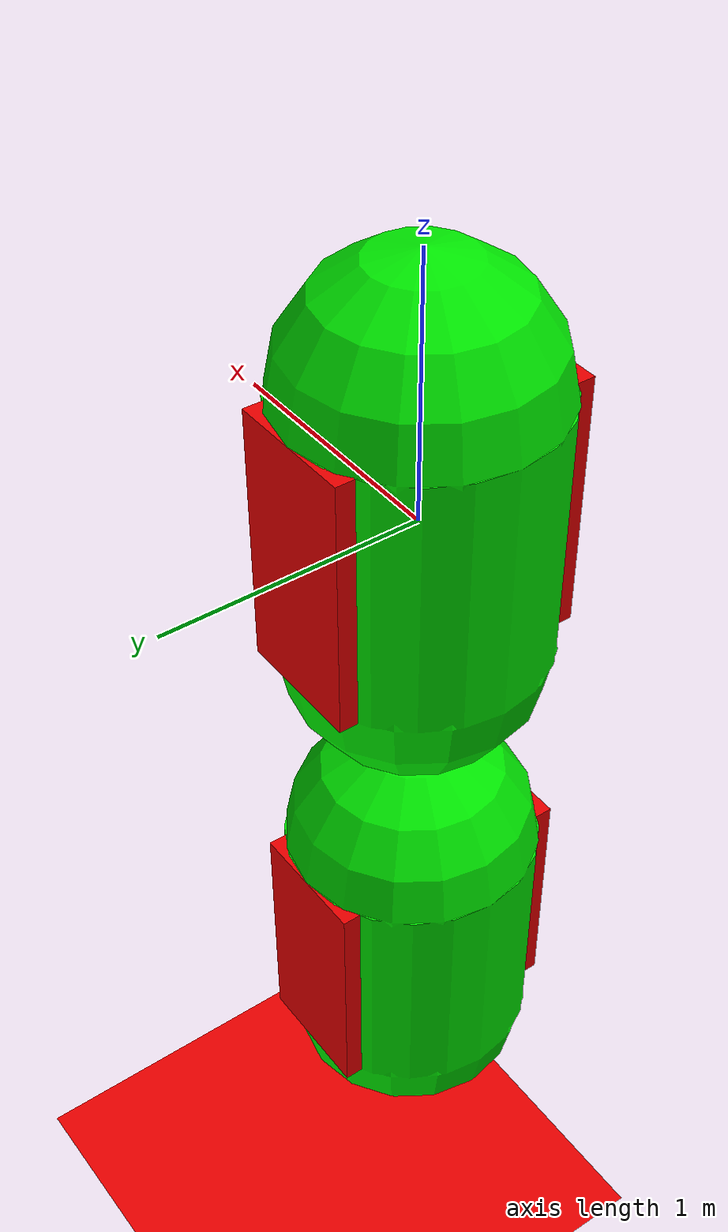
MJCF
<mujoco>
    <option timestep="0.01" integrator="RK4">
		<flag gravity="disable" energy="enable"/>
	</option>
    <compiler autolimits="true"/>
    <worldbody>
        <light diffuse=".5 .5 .5" pos="0 0 3" dir="0 0 -1"/>
        <geom type="plane" pos="0 0 -4" size="3 3 0.1" rgba=".9 0 0 1"/>
        <body name="root" pos="0 0 0" euler="0 0 0">
            <joint name="joint0" type="ball" pos="0 0 1" range="0 90" solreflimit="0 -190"/>
            <inertial pos="0 0 0" euler="0 0 0" mass="1" diaginertia="0.66667 0.66667 0.66667"/>
            <geom type="capsule" size="0.5 0.5" rgba="0 .9 0 1"/>
            <geom name="box0" type="box" size="0.25 0.5 0.5" rgba="0.9 0 0 1"/>
            <body name="body1" pos="0 0 -2" euler="0 0 0">
                <joint name="joint1" type="ball" pos="0 0 1" range="0 90" solreflimit="0 -190"/>
                <inertial pos="0 0 0" euler="0 0 0" mass="1" diaginertia="0.66667 0.66667 0.66667"/>
                <geom type="capsule" size="0.5 0.5" rgba="0 .9 0 1"/>
                <geom name="box1" type="box" size="0.25 0.5 0.5" rgba="0.9 0 0 1"/>
            </body>
        </body>
    </worldbody>
    <sensor>
        <subtreeangmom  body="root"/>
        <subtreecom   body="root"/>
        <subtreelinvel   body="root"/>
    </sensor>
</mujoco>
